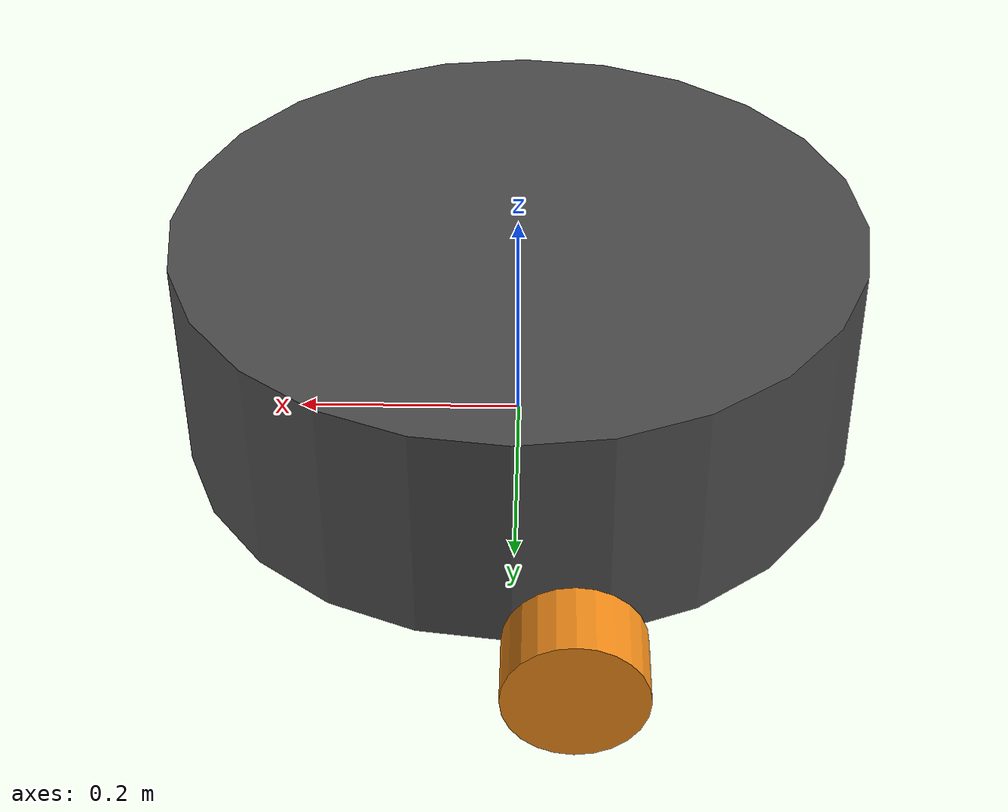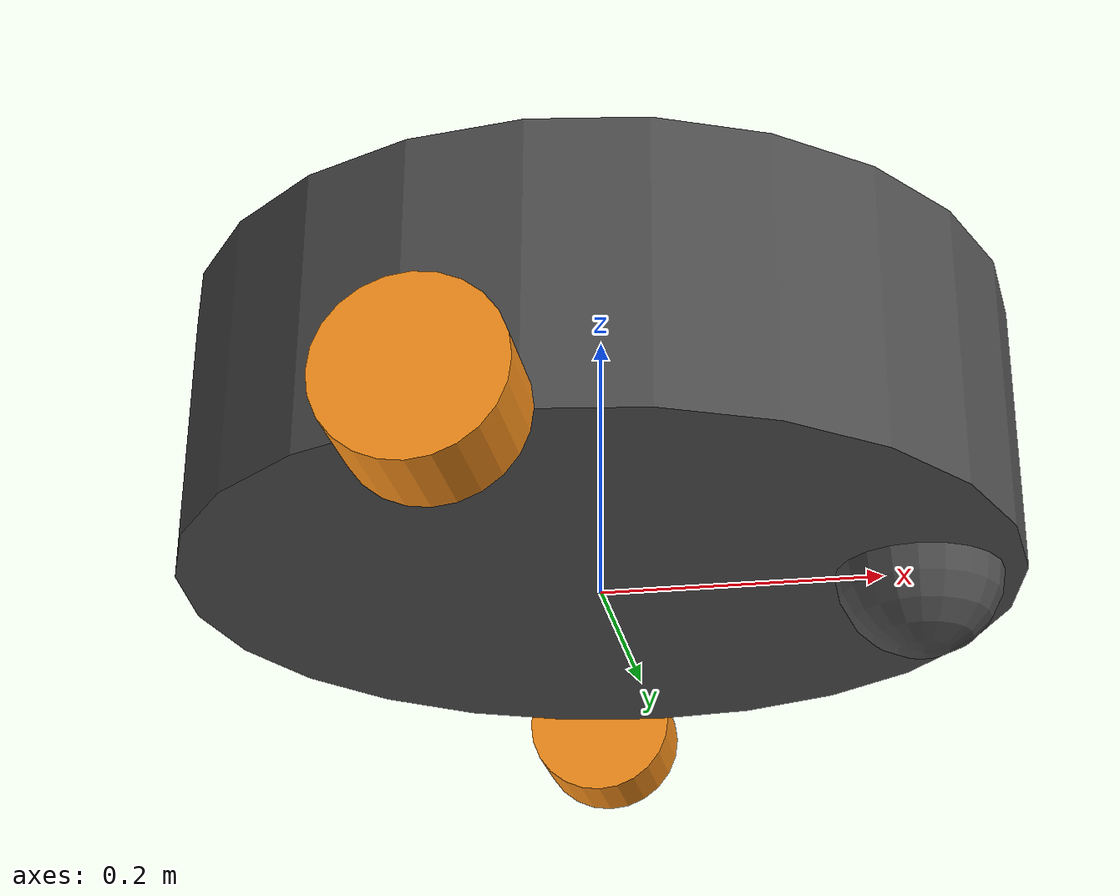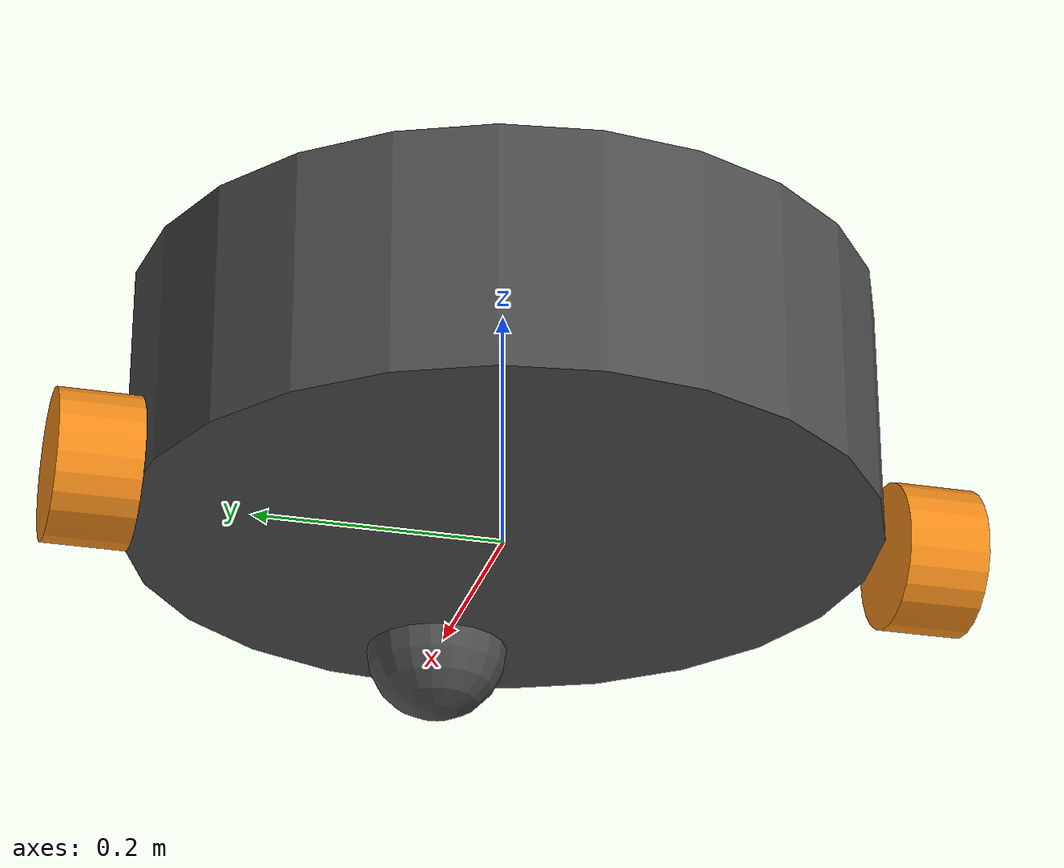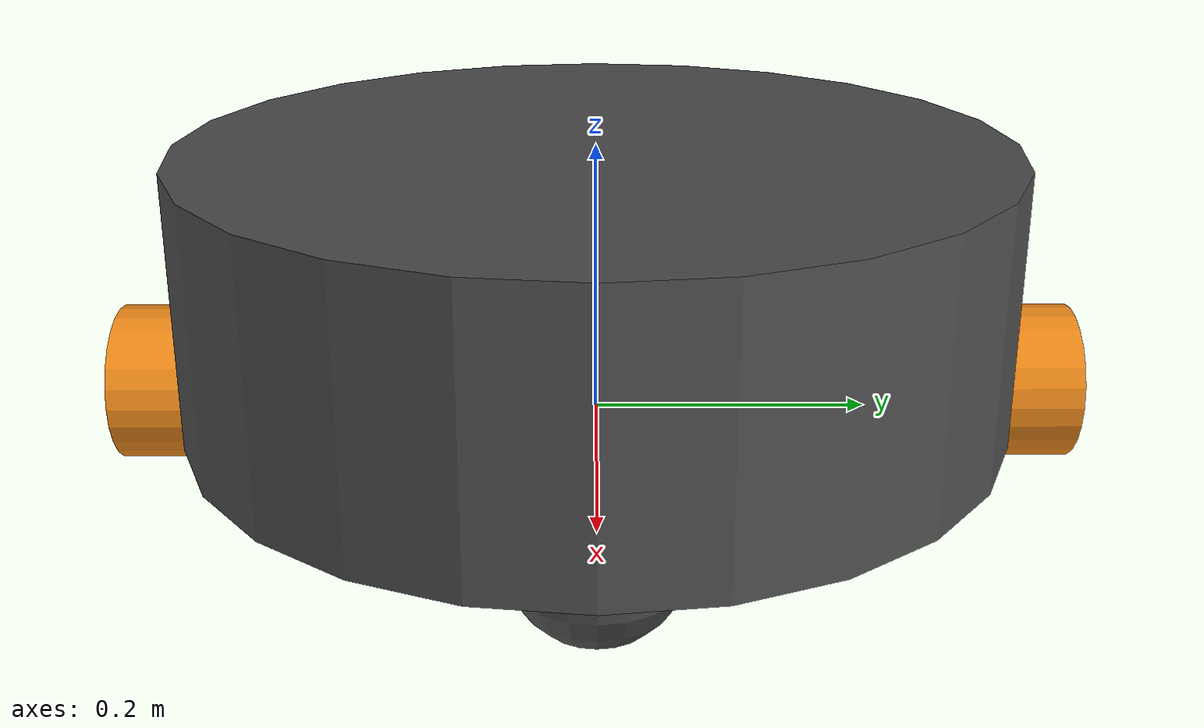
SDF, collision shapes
<sdf version='1.7'>
  <model name='dynobot'>
    <link name='base_link'>
      <inertial>
        <pose>0.03169 0 0.03833 0 -0 0</pose>
        <mass>7.1</mass>
        <inertia>
          <ixx>0.190527</ixx>
          <ixy>0</ixy>
          <ixz>0.00862415</ixz>
          <iyy>0.234079</iyy>
          <iyz>0</iyz>
          <izz>0.271851</izz>
        </inertia>
      </inertial>
      <collision name='base_link_fixed_joint_lump__chassis_link_collision'>
        <pose>0 0 0.1 0 -0 0</pose>
        <geometry>
          <cylinder>
            <length>0.2</length>
            <radius>0.3</radius>
          </cylinder>
        </geometry>
        <surface>
          <contact>
            <ode/>
          </contact>
          <friction>
            <ode/>
          </friction>
        </surface>
      </collision>
      <collision name='base_link_fixed_joint_lump__caster_wheel_collision_1'>
        <pose>0.225 0 0 0 -0 0</pose>
        <geometry>
          <sphere>
            <radius>0.059</radius>
          </sphere>
        </geometry>
        <surface>
          <contact>
            <ode/>
          </contact>
          <friction>
            <ode>
              <mu>0.001</mu>
              <mu2>0.001</mu2>
            </ode>
          </friction>
        </surface>
      </collision>
      <visual name='base_link_fixed_joint_lump__chassis_link_visual'>
        <pose>0 0 0.1 0 -0 0</pose>
        <geometry>
          <cylinder>
            <length>0.2</length>
            <radius>0.3</radius>
          </cylinder>
        </geometry>
        <material>
          <script>
            <name>Gazebo/DarkGray</name>
            <uri>file://media/materials/scripts/gazebo.material</uri>
          </script>
        </material>
      </visual>
      <visual name='base_link_fixed_joint_lump__caster_wheel_visual_1'>
        <pose>0.225 0 0 0 -0 0</pose>
        <geometry>
          <sphere>
            <radius>0.059</radius>
          </sphere>
        </geometry>
        <material>
          <script>
            <name>Gazebo/Black</name>
            <uri>file://media/materials/scripts/gazebo.material</uri>
          </script>
        </material>
      </visual>
      <visual name='base_link_fixed_joint_lump__laser_mount_visual_2'>
        <pose>0 0 0.2 0 -0 0</pose>
        <geometry>
          <mesh>
            <scale>1 1 1</scale>
            <uri>file:///home/ros/install/share/dynobot_description/meshes/hokuyo_ust10.stl</uri>
          </mesh>
        </geometry>
        <material>
          <script>
            <name>Gazebo/DarkGrey</name>
            <uri>file://media/materials/scripts/gazebo.material</uri>
          </script>
        </material>
      </visual>
      <gravity>1</gravity>
      <sensor name='laser_link' type='ray'>
        <visualize>0</visualize>
        <update_rate>10</update_rate>
        <ray>
          <scan>
            <horizontal>
              <samples>720</samples>
              <resolution>1</resolution>
              <min_angle>-3.14159</min_angle>
              <max_angle>3.14159</max_angle>
            </horizontal>
          </scan>
          <range>
            <min>0.06</min>
            <max>100</max>
            <resolution>0.01</resolution>
          </range>
          <noise>
            <type>gaussian</type>
            <mean>0</mean>
            <stddev>0.001</stddev>
          </noise>
        </ray>
        <plugin name='gazebo_ros_laser' filename='libgazebo_ros_ray_sensor.so'>
          <ros>
            <remapping>~/out:=/scan</remapping>
            <qos>
              <topic name='/scan'>
                <publisher>
                  <reliability>best_effort</reliability>
                  <durability>volatile</durability>
                </publisher>
              </topic>
            </qos>
          </ros>
          <frame_name>laser_link</frame_name>
          <robot_namespace>/</robot_namespace>
          <output_type>sensor_msgs/LaserScan</output_type>
        </plugin>
        <pose>0 0 0.2474 0 -0 0</pose>
      </sensor>
    </link>
    <joint name='left_wheel_joint' type='revolute'>
      <pose relative_to='base_link'>-0.05 0.3 0 -1.5708 0 0</pose>
      <parent>base_link</parent>
      <child>left_wheel_link</child>
      <axis>
        <xyz>0 0 1</xyz>
        <limit>
          <lower>-1e+16</lower>
          <upper>1e+16</upper>
        </limit>
        <dynamics>
          <spring_reference>0</spring_reference>
          <spring_stiffness>0</spring_stiffness>
        </dynamics>
      </axis>
    </joint>
    <link name='left_wheel_link'>
      <pose relative_to='left_wheel_joint'>0 0 0 0 -0 0</pose>
      <inertial>
        <pose>0 0 0 0 -0 0</pose>
        <mass>0.1</mass>
        <inertia>
          <ixx>0.000122233</ixx>
          <ixy>0</ixy>
          <ixz>0</ixz>
          <iyy>0.000122233</iyy>
          <iyz>0</iyz>
          <izz>0.00017405</izz>
        </inertia>
      </inertial>
      <collision name='left_wheel_link_collision'>
        <pose>0 0 0.0325 0 -0 1.5708</pose>
        <geometry>
          <cylinder>
            <length>0.065</length>
            <radius>0.059</radius>
          </cylinder>
        </geometry>
        <surface>
          <contact>
            <ode/>
          </contact>
          <friction>
            <ode/>
          </friction>
        </surface>
      </collision>
      <visual name='left_wheel_link_visual'>
        <pose>0 0 0 0 -0 0</pose>
        <geometry>
          <cylinder>
            <length>0.065</length>
            <radius>0.059</radius>
          </cylinder>
        </geometry>
        <material>
          <script>
            <name>Gazebo/Orange</name>
            <uri>file://media/materials/scripts/gazebo.material</uri>
          </script>
        </material>
      </visual>
      <self_collide>1</self_collide>
    </link>
    <joint name='right_wheel_joint' type='revolute'>
      <pose relative_to='base_link'>-0.05 -0.3 0 -1.5708 0 0</pose>
      <parent>base_link</parent>
      <child>right_wheel_link</child>
      <axis>
        <xyz>0 0 1</xyz>
        <limit>
          <lower>-1e+16</lower>
          <upper>1e+16</upper>
        </limit>
        <dynamics>
          <spring_reference>0</spring_reference>
          <spring_stiffness>0</spring_stiffness>
        </dynamics>
      </axis>
    </joint>
    <link name='right_wheel_link'>
      <pose relative_to='right_wheel_joint'>0 0 0 0 -0 0</pose>
      <inertial>
        <pose>0 0 0 0 -0 0</pose>
        <mass>0.1</mass>
        <inertia>
          <ixx>0.000122233</ixx>
          <ixy>0</ixy>
          <ixz>0</ixz>
          <iyy>0.000122233</iyy>
          <iyz>0</iyz>
          <izz>0.00017405</izz>
        </inertia>
      </inertial>
      <collision name='right_wheel_link_collision'>
        <pose>0 0 -0.0325 0 -0 1.5708</pose>
        <geometry>
          <cylinder>
            <length>0.065</length>
            <radius>0.059</radius>
          </cylinder>
        </geometry>
        <surface>
          <contact>
            <ode/>
          </contact>
          <friction>
            <ode/>
          </friction>
        </surface>
      </collision>
      <visual name='right_wheel_link_visual'>
        <pose>0 0 0 0 -0 0</pose>
        <geometry>
          <cylinder>
            <length>0.065</length>
            <radius>0.059</radius>
          </cylinder>
        </geometry>
        <material>
          <script>
            <name>Gazebo/Orange</name>
            <uri>file://media/materials/scripts/gazebo.material</uri>
          </script>
        </material>
      </visual>
      <self_collide>1</self_collide>
    </link>
    <static>0</static>
    <plugin name='diff_drive' filename='libgazebo_ros_diff_drive.so'>
      <left_joint>left_wheel_joint</left_joint>
      <right_joint>right_wheel_joint</right_joint>
      <wheel_separation>0.6</wheel_separation>
      <wheel_diameter>0.059*2</wheel_diameter>
      <max_wheel_torque>200</max_wheel_torque>
      <max_wheel_acceleration>5.0</max_wheel_acceleration>
      <odometry_frame>odom</odometry_frame>
      <robot_base_frame>base_link</robot_base_frame>
      <publish_odom>1</publish_odom>
      <publish_odom_tf>1</publish_odom_tf>
      <publish_wheel_tf>1</publish_wheel_tf>
    </plugin>
  </model>
</sdf>
